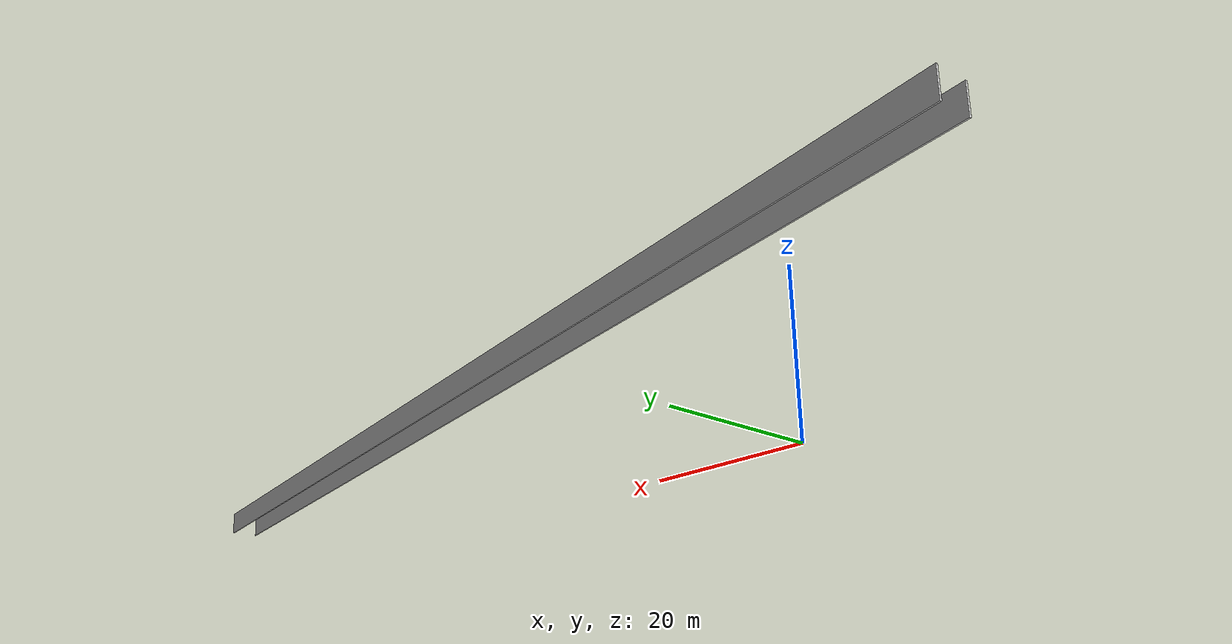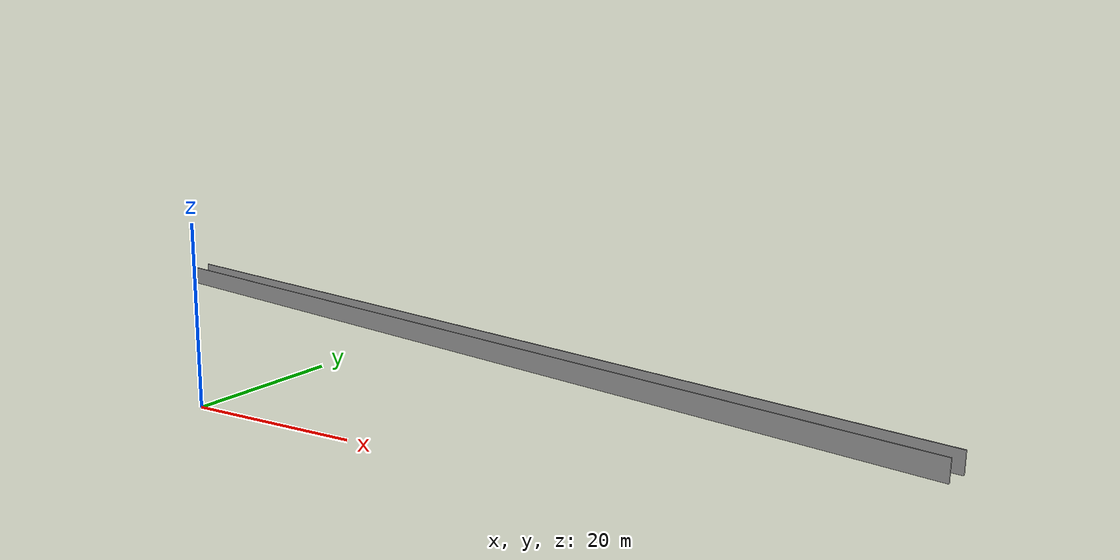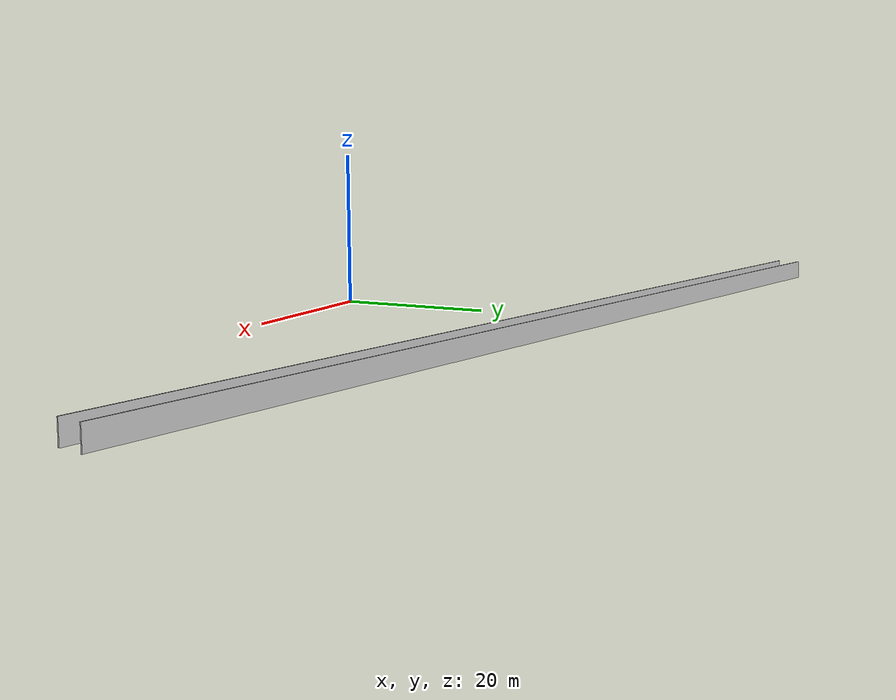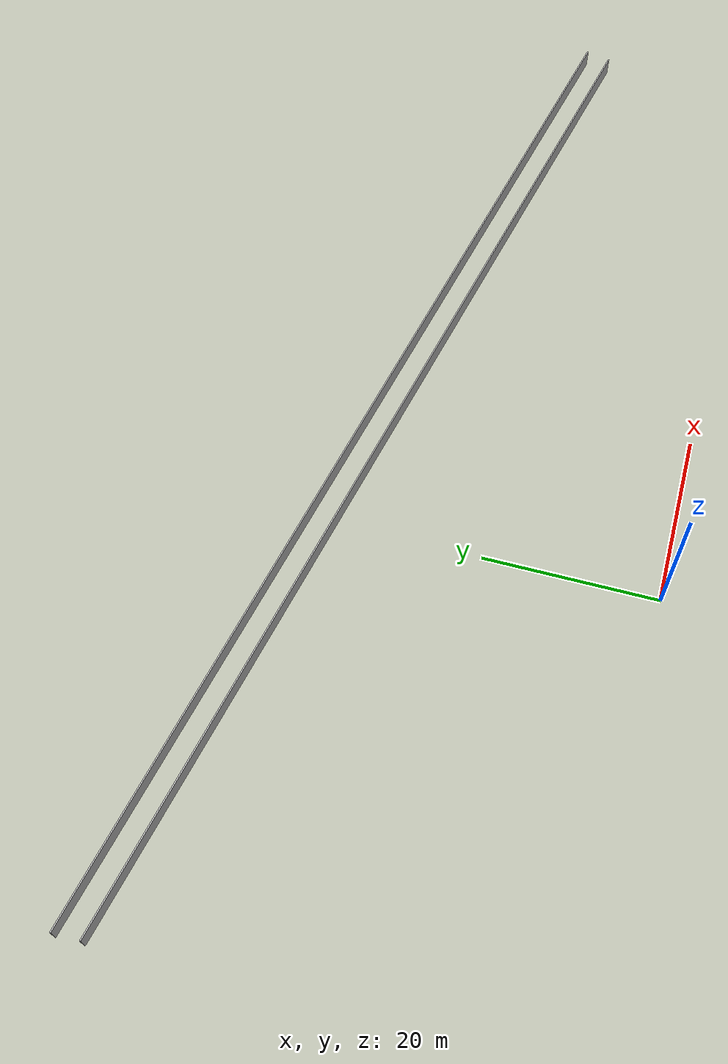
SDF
<?xml version="1.0" ?>
<sdf version="1.6">
  <model name="sps_0107">
    <pose frame="">0 0 0 0 -0 0</pose>
    <static>1</static>
    <self_collide>0</self_collide>
    <allow_auto_disable>0</allow_auto_disable>
    <link name="Wall2663">
      <kinematic>0</kinematic>
      <gravity>1</gravity>
      <self_collide>0</self_collide>
      <collision name="collision">
        <geometry>
          <box>
            <size>126.068 0.15 2.5</size>
          </box>
        </geometry>
        <pose frame="">0 0 0 0 -0 0</pose>
      </collision>
      <visual name="visual">
        <geometry>
          <box>
            <size>126.068 0.15 2.5</size>
          </box>
        </geometry>
        <pose frame="">0 0 0 0 -0 0</pose>
        <cast_shadows>1</cast_shadows>
        <transparency>0.0</transparency>
      </visual>
      <pose frame="">11.4778 34.1298 1.25 0 0 -0.22267</pose>
    </link>
    <link name="Wall3506">
      <kinematic>0</kinematic>
      <gravity>1</gravity>
      <self_collide>0</self_collide>
      <collision name="collision">
        <geometry>
          <box>
            <size>126.742 0.15 2.5</size>
          </box>
        </geometry>
        <pose frame="">0 0 0 0 -0 0</pose>
      </collision>
      <visual name="visual">
        <geometry>
          <box>
            <size>126.742 0.15 2.5</size>
          </box>
        </geometry>
        <pose frame="">0 0 0 0 -0 0</pose>
        <cast_shadows>1</cast_shadows>
        <transparency>0.0</transparency>
      </visual>
      <pose frame="">11.8062 37.1314 1.25 0 0 -0.22267</pose>
    </link>
  </model>
</sdf>
